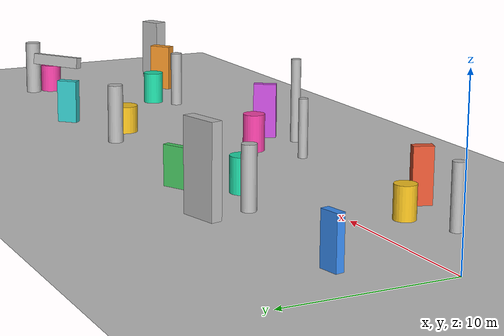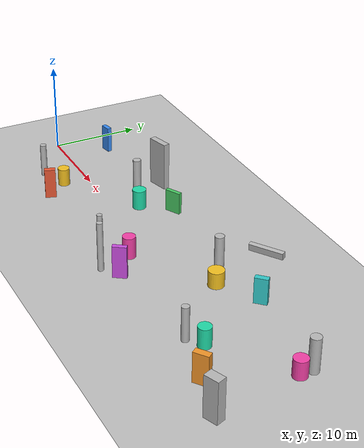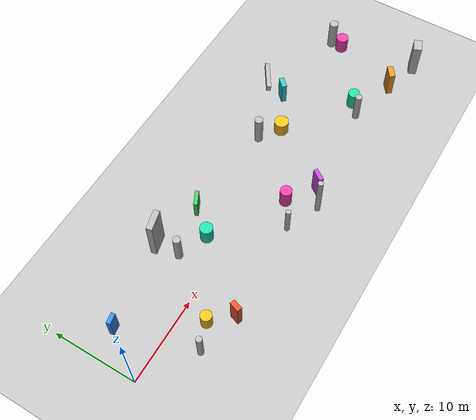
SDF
<sdf version="1.9">
 <world name="long_featured">
  <physics type="ode">
   <max_step_size>0.004</max_step_size>
   <real_time_factor>0.8</real_time_factor>
   <real_time_update_rate>200</real_time_update_rate>
  </physics>
  <gravity>0 0 -9.8</gravity>
  <scene>
   <grid>true</grid>
   <ambient>0.4 0.4 0.4 1</ambient>
   <background>0.72 0.78 0.85 1</background>
   <shadows>true</shadows>
  </scene>
  <model name="ground_plane">
   <static>true</static>
   <link name="link">
    <collision name="collision">
     <geometry><plane><normal>0 0 1</normal><size>200 200</size></plane></geometry>
    </collision>
    <visual name="visual">
     <geometry><plane><normal>0 0 1</normal><size>200 200</size></plane></geometry>
     <material><ambient>0.75 0.75 0.75 1</ambient><diffuse>0.75 0.75 0.75 1</diffuse></material>
    </visual>
   </link>
  </model>
  <model name="long_featured_pillar_01">
   <static>true</static>
   <pose>9.0 -2.80 1.0 0 0 0</pose>
   <link name="link">
    <collision name="collision">
     <geometry><cylinder><radius>0.65</radius><length>2.0</length></cylinder></geometry>
    </collision>
    <visual name="visual">
     <geometry><cylinder><radius>0.65</radius><length>2.0</length></cylinder></geometry>
     <material><ambient>0.85 0.65 0.10 1</ambient><diffuse>0.95 0.75 0.12 1</diffuse></material>
    </visual>
   </link>
  </model>
  <model name="long_featured_pillar_02">
   <static>true</static>
   <pose>17.5 2.60 1.10 0 0 0.12</pose>
   <link name="link">
    <collision name="collision">
     <geometry><cylinder><radius>0.75</radius><length>2.2</length></cylinder></geometry>
    </collision>
    <visual name="visual">
     <geometry><cylinder><radius>0.75</radius><length>2.2</length></cylinder></geometry>
     <material><ambient>0.10 0.70 0.55 1</ambient><diffuse>0.12 0.85 0.65 1</diffuse></material>
    </visual>
   </link>
  </model>
  <model name="long_featured_pillar_03">
   <static>true</static>
   <pose>26.0 -2.60 1.20 0 0 0</pose>
   <link name="link">
    <collision name="collision">
     <geometry><cylinder><radius>0.70</radius><length>2.4</length></cylinder></geometry>
    </collision>
    <visual name="visual">
     <geometry><cylinder><radius>0.70</radius><length>2.4</length></cylinder></geometry>
     <material><ambient>0.80 0.20 0.55 1</ambient><diffuse>0.95 0.25 0.65 1</diffuse></material>
    </visual>
   </link>
  </model>
  <model name="long_featured_pillar_04">
   <static>true</static>
   <pose>34.5 2.80 0.90 0 0 0.28</pose>
   <link name="link">
    <collision name="collision">
     <geometry><cylinder><radius>0.85</radius><length>1.8</length></cylinder></geometry>
    </collision>
    <visual name="visual">
     <geometry><cylinder><radius>0.85</radius><length>1.8</length></cylinder></geometry>
     <material><ambient>0.85 0.65 0.10 1</ambient><diffuse>0.95 0.75 0.12 1</diffuse></material>
    </visual>
   </link>
  </model>
  <model name="long_featured_pillar_05">
   <static>true</static>
   <pose>42.5 -2.80 1.10 0 0 0.43</pose>
   <link name="link">
    <collision name="collision">
     <geometry><cylinder><radius>0.70</radius><length>2.2</length></cylinder></geometry>
    </collision>
    <visual name="visual">
     <geometry><cylinder><radius>0.70</radius><length>2.2</length></cylinder></geometry>
     <material><ambient>0.10 0.70 0.55 1</ambient><diffuse>0.12 0.85 0.65 1</diffuse></material>
    </visual>
   </link>
  </model>
  <model name="long_featured_pillar_06">
   <static>true</static>
   <pose>50.0 2.60 1.00 0 0 0.18</pose>
   <link name="link">
    <collision name="collision">
     <geometry><cylinder><radius>0.75</radius><length>2.0</length></cylinder></geometry>
    </collision>
    <visual name="visual">
     <geometry><cylinder><radius>0.75</radius><length>2.0</length></cylinder></geometry>
     <material><ambient>0.80 0.20 0.55 1</ambient><diffuse>0.95 0.25 0.65 1</diffuse></material>
    </visual>
   </link>
  </model>
  <model name="long_featured_tree_01">
   <static>true</static>
   <pose>6.0 -4.0 1.90 0 0 0.08</pose>
   <link name="link">
    <collision name="collision">
     <geometry><cylinder><radius>0.35</radius><length>3.8</length></cylinder></geometry>
    </collision>
    <visual name="visual">
     <geometry><cylinder><radius>0.35</radius><length>3.8</length></cylinder></geometry>
    </visual>
   </link>
  </model>
  <model name="long_featured_tree_02">
   <static>true</static>
   <pose>14.0 4.0 1.90 0 0 -0.11</pose>
   <link name="link">
    <collision name="collision">
     <geometry><cylinder><radius>0.45</radius><length>3.8</length></cylinder></geometry>
    </collision>
    <visual name="visual">
     <geometry><cylinder><radius>0.45</radius><length>3.8</length></cylinder></geometry>
    </visual>
   </link>
  </model>
  <model name="long_featured_tree_03">
   <static>true</static>
   <pose>23.0 -4.5 1.90 0 0 0.19</pose>
   <link name="link">
    <collision name="collision">
     <geometry><cylinder><radius>0.30</radius><length>3.8</length></cylinder></geometry>
    </collision>
    <visual name="visual">
     <geometry><cylinder><radius>0.30</radius><length>3.8</length></cylinder></geometry>
    </visual>
   </link>
  </model>
  <model name="long_featured_tree_04">
   <static>true</static>
   <pose>32.0 4.5 1.90 0 0 -0.23</pose>
   <link name="link">
    <collision name="collision">
     <geometry><cylinder><radius>0.50</radius><length>3.8</length></cylinder></geometry>
    </collision>
    <visual name="visual">
     <geometry><cylinder><radius>0.50</radius><length>3.8</length></cylinder></geometry>
    </visual>
   </link>
  </model>
  <model name="long_featured_tree_05">
   <static>true</static>
   <pose>41.0 -4.0 1.90 0 0 0.31</pose>
   <link name="link">
    <collision name="collision">
     <geometry><cylinder><radius>0.40</radius><length>3.8</length></cylinder></geometry>
    </collision>
    <visual name="visual">
     <geometry><cylinder><radius>0.40</radius><length>3.8</length></cylinder></geometry>
    </visual>
   </link>
  </model>
  <model name="long_featured_tree_06">
   <static>true</static>
   <pose>50.0 4.0 1.90 0 0 -0.37</pose>
   <link name="link">
    <collision name="collision">
     <geometry><cylinder><radius>0.55</radius><length>3.8</length></cylinder></geometry>
    </collision>
    <visual name="visual">
     <geometry><cylinder><radius>0.55</radius><length>3.8</length></cylinder></geometry>
    </visual>
   </link>
  </model>
  <model name="long_featured_texture_01">
   <static>true</static>
   <pose>3.5 5.0 1.50 0 0 0.18</pose>
   <link name="link">
    <collision name="collision"><geometry><box><size>1.2 0.5 3.0</size></box></geometry></collision>
    <visual name="visual">
     <geometry><box><size>1.2 0.5 3.0</size></box></geometry>
     <material><ambient>0.18 0.45 0.82 1</ambient><diffuse>0.22 0.55 0.95 1</diffuse></material>
    </visual>
   </link>
  </model>
  <model name="long_featured_texture_02">
   <static>true</static>
   <pose>11.0 -5.2 1.70 0 0 -0.32</pose>
   <link name="link">
    <collision name="collision"><geometry><box><size>0.6 1.2 3.4</size></box></geometry></collision>
    <visual name="visual">
     <geometry><box><size>0.6 1.2 3.4</size></box></geometry>
     <material><ambient>0.72 0.28 0.16 1</ambient><diffuse>0.90 0.34 0.20 1</diffuse></material>
    </visual>
   </link>
  </model>
  <model name="long_featured_texture_03">
   <static>true</static>
   <pose>20.0 5.5 1.25 0 0 0.47</pose>
   <link name="link">
    <collision name="collision"><geometry><box><size>1.8 0.45 2.5</size></box></geometry></collision>
    <visual name="visual">
     <geometry><box><size>1.8 0.45 2.5</size></box></geometry>
     <material><ambient>0.22 0.62 0.30 1</ambient><diffuse>0.28 0.78 0.38 1</diffuse></material>
    </visual>
   </link>
  </model>
  <model name="long_featured_texture_04">
   <static>true</static>
   <pose>29.0 -5.0 1.80 0 0 -0.61</pose>
   <link name="link">
    <collision name="collision"><geometry><box><size>0.5 1.5 3.6</size></box></geometry></collision>
    <visual name="visual">
     <geometry><box><size>0.5 1.5 3.6</size></box></geometry>
     <material><ambient>0.64 0.24 0.70 1</ambient><diffuse>0.78 0.30 0.86 1</diffuse></material>
    </visual>
   </link>
  </model>
  <model name="long_featured_texture_05">
   <static>true</static>
   <pose>39.0 5.2 1.45 0 0 0.79</pose>
   <link name="link">
    <collision name="collision"><geometry><box><size>1.4 0.6 2.9</size></box></geometry></collision>
    <visual name="visual">
     <geometry><box><size>1.4 0.6 2.9</size></box></geometry>
     <material><ambient>0.16 0.62 0.62 1</ambient><diffuse>0.20 0.78 0.78 1</diffuse></material>
    </visual>
   </link>
  </model>
  <model name="long_featured_texture_06">
   <static>true</static>
   <pose>47.0 -5.5 1.65 0 0 -0.94</pose>
   <link name="link">
    <collision name="collision"><geometry><box><size>0.7 1.6 3.3</size></box></geometry></collision>
    <visual name="visual">
     <geometry><box><size>0.7 1.6 3.3</size></box></geometry>
     <material><ambient>0.78 0.48 0.12 1</ambient><diffuse>0.94 0.58 0.16 1</diffuse></material>
    </visual>
   </link>
  </model>
  <model name="long_featured_corner_a">
   <static>true</static>
   <pose>14.0 6.8 2.75 0 0 0.24</pose>
   <link name="link">
    <collision name="collision"><geometry><box><size>2.4 0.7 5.5</size></box></geometry></collision>
    <visual name="visual"><geometry><box><size>2.4 0.7 5.5</size></box></geometry></visual>
   </link>
  </model>
  <model name="long_featured_pole_b">
   <static>true</static>
   <pose>27.0 -6.2 2.75 0 0 0</pose>
   <link name="link">
    <collision name="collision">
     <geometry><cylinder><radius>0.32</radius><length>5.5</length></cylinder></geometry>
    </collision>
    <visual name="visual">
     <geometry><cylinder><radius>0.32</radius><length>5.5</length></cylinder></geometry>
    </visual>
   </link>
  </model>
  <model name="long_featured_beam_c">
   <static>true</static>
   <pose>37.5 6.5 4.65 0.1 0 0.58</pose>
   <link name="link">
    <collision name="collision"><geometry><box><size>3.6 0.5 0.7</size></box></geometry></collision>
    <visual name="visual"><geometry><box><size>3.6 0.5 0.7</size></box></geometry></visual>
   </link>
  </model>
  <model name="long_featured_low_d">
   <static>true</static>
   <pose>51.5 -6.8 2.25 0 0 0.37</pose>
   <link name="link">
    <collision name="collision"><geometry><box><size>1.6 1.0 4.5</size></box></geometry></collision>
    <visual name="visual"><geometry><box><size>1.6 1.0 4.5</size></box></geometry></visual>
   </link>
  </model>
  <light name="sunUTC" type="directional">
   <pose>0 0 500 0 0 0</pose>
   <intensity>1</intensity>
   <direction>0.001 0.625 -0.78</direction>
  </light>
  <spherical_coordinates>
   <surface_model>EARTH_WGS84</surface_model>
   <world_frame_orientation>ENU</world_frame_orientation>
   <latitude_deg>10.8231</latitude_deg>
   <longitude_deg>106.6297</longitude_deg>
   <elevation>10</elevation>
  </spherical_coordinates>
 </world>
</sdf>
